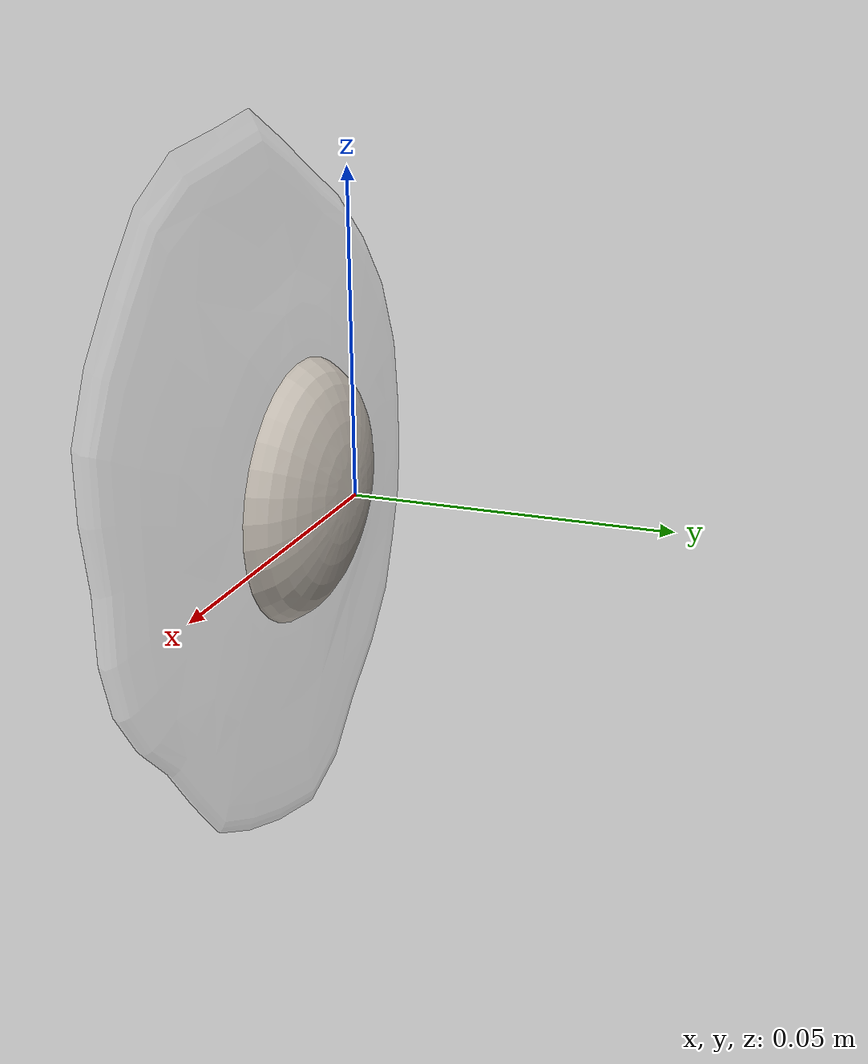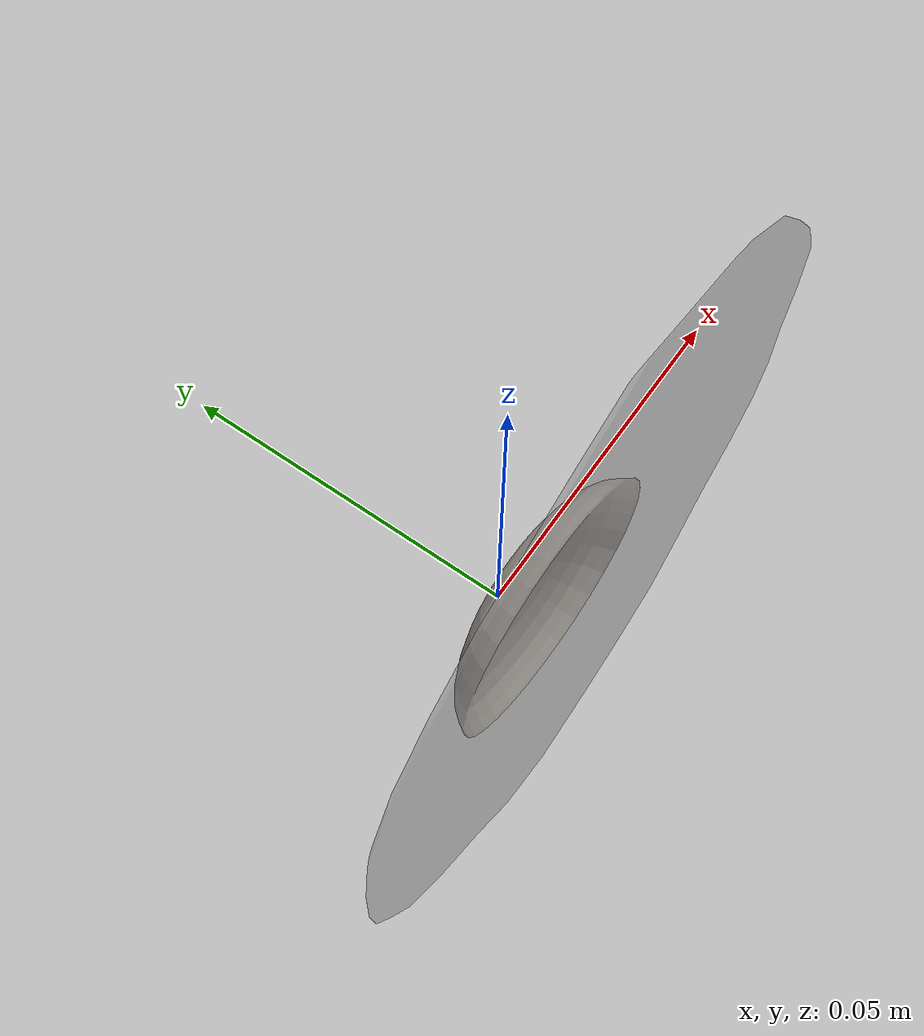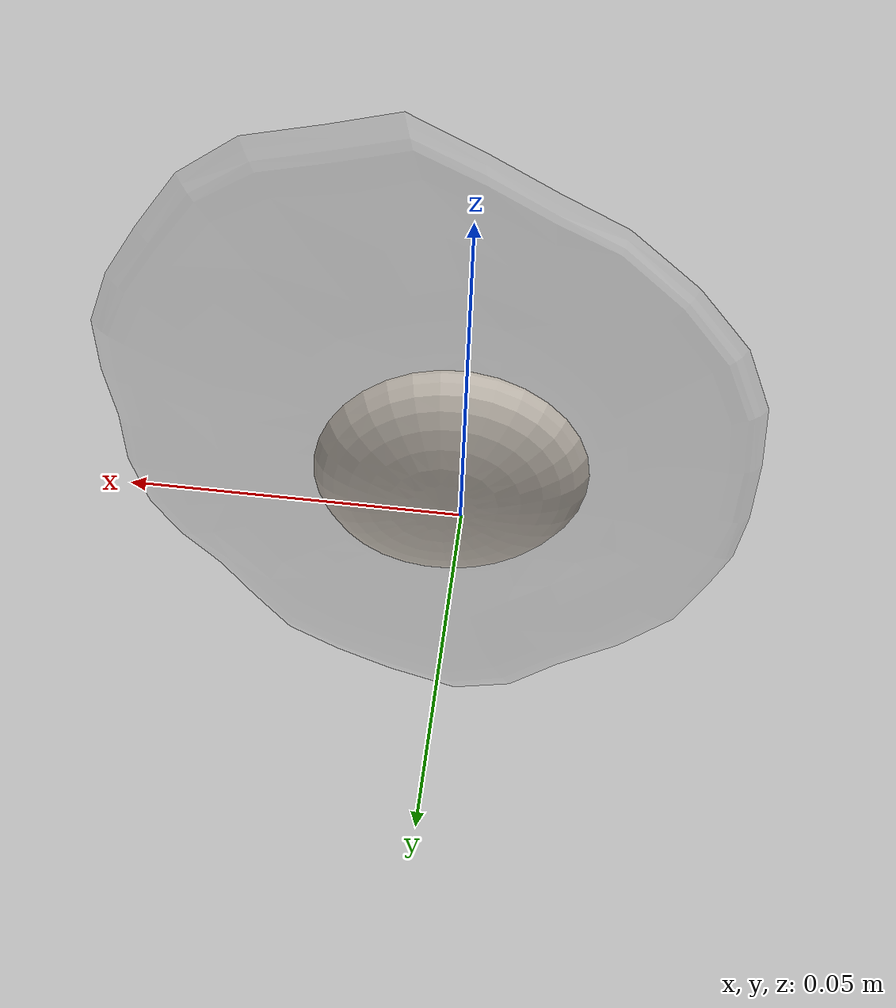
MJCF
<mujoco model="Egg_Cracked_24">
  <compiler autolimits="true" boundmass="0.01" angle="radian"/>
  <default>
    <default class="/">
      <default class="__VISUAL_MJT__">
        <geom contype="0" conaffinity="0" group="0"/>
      </default>
      <default class="__STRUCTURAL_MJT__">
        <geom contype="8" conaffinity="15" group="4" friction="0.90000000000000002 0.90000000000000002 0.001" solref="0.025000000000000001 1" solimp="0.998 0.998 0.001"/>
      </default>
      <default class="__DYNAMIC_MJT__">
        <geom contype="1" conaffinity="15" group="4" friction="0.90000000000000002 0.90000000000000002 0.001" solref="0.025000000000000001 1" solimp="0.998 0.998 0.001"/>
      </default>
    </default>
  </default>
  <asset>
    <texture name="Fried_Egg_White_Uncooked_Mat" type="2d" file="Fried_Egg_AlbedoTransparency.png"/>
    <material name="material_Fried_Egg_White_Uncooked_Mat" class="/" texture="Fried_Egg_White_Uncooked_Mat" specular="0.5" shininess="0.5" rgba="1 1 1 0.5"/>
    <texture name="Fried_Egg_Yolk_Mat" type="2d" file="Fried_Egg_AlbedoTransparency.png"/>
    <material name="material_Fried_Egg_Yolk_Mat" class="/" texture="Fried_Egg_Yolk_Mat" specular="0.5" shininess="0.5" rgba="1 1 1 1"/>
    <mesh name="Egg_Cracked_24_fried_egg_23_0" class="/" file="Egg_Cracked_24_fried_egg_23/Egg_Cracked_24_fried_egg_23_0.obj" scale="1 1 1"/>
    <mesh name="Egg_Cracked_24_fried_egg_23_1" class="/" file="Egg_Cracked_24_fried_egg_23/Egg_Cracked_24_fried_egg_23_1.obj" scale="1 1 1"/>
  </asset>
  <worldbody>
    <body name="Egg_Cracked_24">
      <joint name="Egg_Cracked_24_free" class="/" type="free" pos="0 0 0" axis="0 0 1" stiffness="0" range="0 0" armature="0" damping="0.10000000000000001" frictionloss="0"/>
      <body name="Egg_Cracked_24_fried_egg_23" pos="0.0034199999999999999 -0.01023 0.0023500000000000001" quat="1 0 0 0">
        <geom name="Egg_Cracked_24_fried_egg_23_0" class="__VISUAL_MJT__" type="mesh" material="material_Fried_Egg_White_Uncooked_Mat" shellinertia="false" mesh="Egg_Cracked_24_fried_egg_23_0"/>
        <geom name="Egg_Cracked_24_fried_egg_23_1" class="__VISUAL_MJT__" type="mesh" material="material_Fried_Egg_Yolk_Mat" shellinertia="false" mesh="Egg_Cracked_24_fried_egg_23_1"/>
        <geom name="Egg_Cracked_24_PrimitiveCollider_0" class="__DYNAMIC_MJT__" type="box" size="0.049599643796682358 0.010231256484985352 0.058515526354312897" rgba="0 1 0 1" pos="0.0034156590700149536 0.010231256484985352 -0.0023525133728981018" quat="1 0 0 0"/>
      </body>
    </body>
  </worldbody>
</mujoco>
